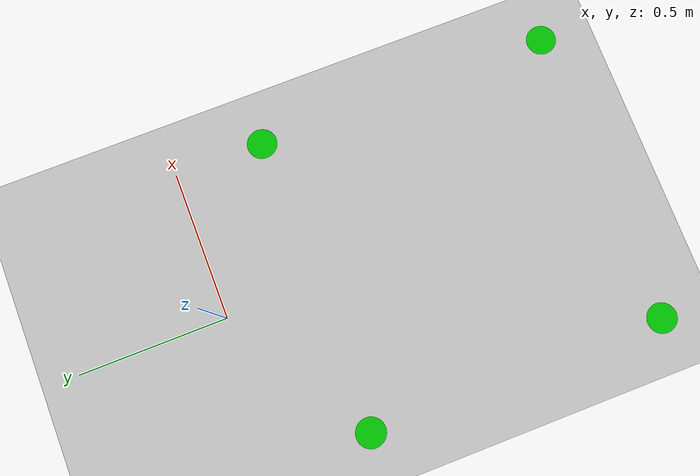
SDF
<?xml version="1.0" ?>
<sdf version="1.4">
  <world name="default">
  <!-- Ground plane and lighting -->
    <include>
      <uri>model://ground_plane</uri>
    </include>
    <include>
      <uri>model://sun</uri>
    </include>

    <model name="checkerbox">
      <include>
        <static>true</static>
        <pose>0 -0.8 0 0 0 0</pose>
        <uri>model://checkerbox</uri>
      </include>
    </model>
  </world>
</sdf>

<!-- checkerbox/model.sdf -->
<sdf version="1.5">
  <model name="checkerbox">
    <link name="link">
    <collision name="collision">
        <geometry>
          <mesh>
            <uri>model://checkerbox/meshes/checkerbox.dae</uri>
          </mesh>
        </geometry>
      </collision>
      <visual name="visual">
        <cast_shadows>false</cast_shadows>
        <geometry>
          <mesh>
            <uri>model://checkerbox/meshes/checkerbox.dae</uri>
          </mesh>
        </geometry>
      </visual>
    </link>
  </model>
</sdf>
